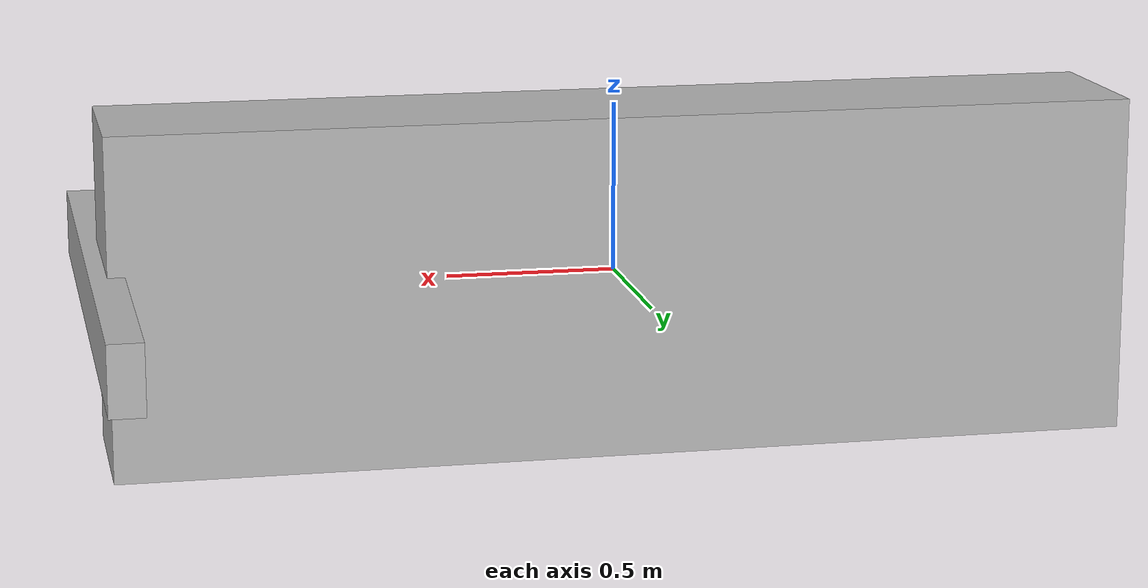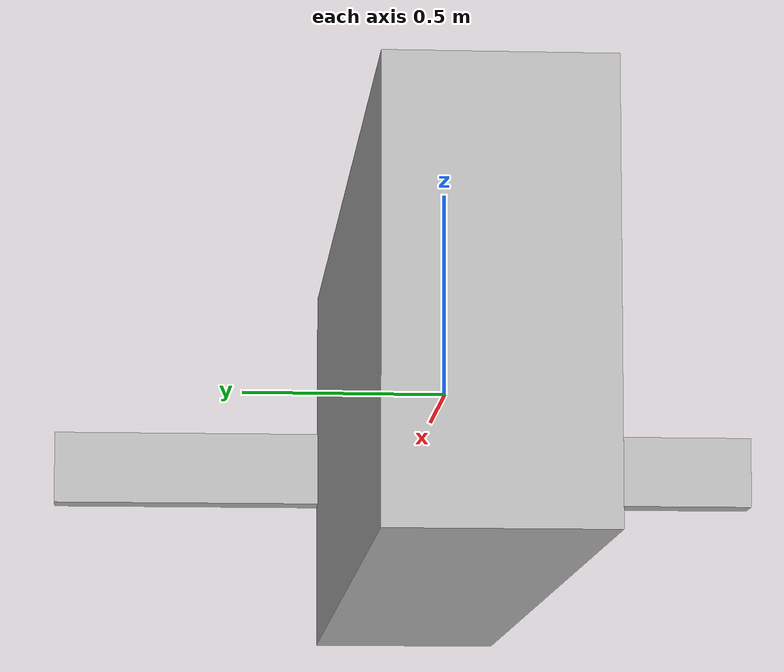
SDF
<?xml version="1.0"?>
<sdf version='1.10'>
  <model name='plane'>
	<link name="body">
		<pose>0 0 0 0 0 0</pose>
      <inertial>
        <pose>0 0 0 0 0 0</pose>
        <mass>1.5</mass>
        <inertia>
          <ixx>0.197563</ixx>
          <ixy>0</ixy>
          <ixz>0</ixz>
          <iyy>0.1458929</iyy>
          <iyz>0</iyz>
          <izz>0.1477</izz>
        </inertia>
      </inertial>
      <collision name='base_link_collision'>
        <pose>0 0 0 0 0 0</pose>
        <geometry>
          <box>
            <size>3 1.5 1</size>
          </box>
        </geometry>
      </collision>

      <visual name="main_vis">
      	<pose>0 0 0 0 0 0</pose>
      	<geometry>
      		<box>
      			<size>3 0.5 1</size>
      		</box>
      	</geometry>
      </visual>
	</link>

	<link name="prop">
		<pose degrees="true">1.5 0 0 0 0 0</pose>
		<inertial>
			<mass>0.001</mass>
			<inertia>
				<ixx>2e-06</ixx>
		      	<ixy>0</ixy>
		      	<ixz>0</ixz>
		      	<iyy>0.00033</iyy>
		      	<iyz>0</iyz>
		      	<izz>0.00033</izz>
			</inertia>
		</inertial>

		<collision name='prop_collision'>
        	<pose degrees="true">0 0 0 0 0 0</pose>
        	<geometry>
				<box>
					<size>0.01 0.02 0.02</size>
				</box>
        	</geometry>
      	</collision>

		<visual name="prop_vis">
			<pose degrees="true">0 0 0 0 0 0</pose>
			<geometry>
				<box>
					<size>0.1 2 0.2</size>
				</box>
			</geometry>
		</visual>
	</link>

	<joint name="prop_joint" type="revolute">
		<child>prop</child>
		<parent>body</parent>
		<pose>3 0 0   0 0 0</pose>
		<axis>
		    <xyz>1 0 0</xyz>
		    <limit>
		      	<lower>-1e+16</lower>
		      	<upper>1e+16</upper>
		    </limit>
      	</axis>
	</joint>

	<!-- imu for ardupilot plugin -->
	<link name='imu_link'>
      <inertial>
        <pose>0 0 0 0 0 0</pose>
        <mass>0.15</mass>
        <inertia>
          <ixx>0.00002</ixx>
          <ixy>0</ixy>
          <ixz>0</ixz>
          <iyy>0.00002</iyy>
          <iyz>0</iyz>
          <izz>0.00002</izz>
        </inertia>
      </inertial>
      <sensor name="imu_sensor" type="imu">
        <pose degrees="true">0 0 0 180 0 -90</pose>
        <always_on>1</always_on>
        <update_rate>1000.0</update_rate>
      </sensor>
    </link>
    <joint name='imu_joint' type='revolute'>
      <child>imu_link</child>
      <parent>body</parent>
      <axis>
        <xyz>0 0 1</xyz>
        <limit>
          <lower>0</lower>
          <upper>0</upper>
          <effort>0</effort>
          <velocity>0</velocity>
        </limit>
        <dynamics>
          <damping>1.0</damping>
        </dynamics>
      </axis>
    </joint>

	<!-- PLUGINS -->

	<plugin filename="gz-sim-joint-state-publisher-system"
      name="gz::sim::systems::JointStatePublisher">
    </plugin>

	<plugin filename="gz-sim-apply-joint-force-system"
      name="gz::sim::systems::ApplyJointForce">
      <joint_name>prop_joint</joint_name>
    </plugin>

	<plugin name="ArduPilotPlugin" filename="ArduPilotPlugin">
      <!-- Port settings -->
      <fdm_addr>127.0.0.1</fdm_addr>
      <fdm_port_in>9002</fdm_port_in>
      <connectionTimeoutMaxCount>5</connectionTimeoutMaxCount>
      <lock_step>1</lock_step>

      <modelXYZToAirplaneXForwardZDown degrees="true">0 0 0 180 0 -90</modelXYZToAirplaneXForwardZDown>
      <gazeboXYZToNED degrees="true">0 0 0 180 0 90</gazeboXYZToNED>

      <!-- Sensors -->
      <imuName>imu_link::imu_sensor</imuName>

      <!--
          incoming control command [0, 1]
          so offset it by 0 to get [0, 1]
          and divide max target by 1.
          offset = 0
          multiplier = 838 max rpm / 1 = 838
        -->

      <!--
          SERVO3_FUNCTION   70 (Throttle)
          SERVO3_MAX        1900
          SERVO3_MIN        1100
          SERVO3_REVERSED   0
          SERVO3_TRIM       1100
       -->
      <control channel="2">
        <jointName>prop_joint</jointName>
        <useForce>1</useForce>
        <multiplier>838</multiplier>
        <offset>0</offset>
        <servo_min>1100</servo_min>
        <servo_max>1900</servo_max>
        <type>VELOCITY</type>
        <p_gain>0.20</p_gain>
        <i_gain>0</i_gain>
        <d_gain>0</d_gain>
        <i_max>0</i_max>
        <i_min>0</i_min>
        <cmd_max>2.5</cmd_max>
        <cmd_min>0.0</cmd_min>
      </control>
    </plugin>

	<plugin name="gz::sim::v7::systems::AdvancedLiftDrag" filename="libgz-sim7-advanced-lift-drag-system.so.7">
      <a0>0.0</a0>
      <CL0>0.981</CL0>
      <AR>7.34</AR>
      <eff>0.97</eff>
      <CLa>6.2</CLa>
      <CD0>0.029</CD0>
      <Cem0>0.075</Cem0>
      <Cema>-0.463966</Cema>
      <CYb>-0.258244</CYb>
      <Cellb>-0.039250</Cellb>
      <Cenb>0.100826</Cenb>
      <CDp>0.0</CDp>
      <CYp>0.065861</CYp>
      <CLp>0.0</CLp>
      <Cellp>-0.487407</Cellp>
      <Cemp>0.0</Cemp>
      <Cenp>-0.040416</Cenp>
      <CDq>0.055166</CDq>
      <CYq>0.0</CYq>
      <CLq>7.971792</CLq>
      <Cellq>0.0</Cellq>
      <Cemq>-12.140140</Cemq>
      <Cenq>0.0</Cenq>
      <CDr>0.0</CDr>
      <CYr>0.230299</CYr>
      <CLr>0.0</CLr>
      <Cellr>0.078165</Cellr>
      <Cemr>0.0</Cemr>
      <Cenr>-0.089947</Cenr>
      <alpha_stall>0.3391428111</alpha_stall>
      <CLa_stall>-3.85</CLa_stall>
      <CDa_stall>-0.9233984055</CDa_stall>
      <Cema_stall>0</Cema_stall>
      <ref_pt>-0.12 0.0 0.0</ref_pt>
      <area>0.34</area>
      <mac>0.22</mac>
      <air_density>1.2041</air_density>
      <forward>1 0 0</forward>
      <upward>0 0 1</upward>
      <link_name>body</link_name>
      <topic_name>lift_force/left_elevon</topic_name>

    </plugin>

    <plugin filename="ThrustSystem" name="thrust_system::ThrustSystem">
    	<propeller_joint>prop_joint</propeller_joint>
    	<body_link>body</body_link>
    	<prop_diameter>52.07</prop_diameter>
    </plugin>
  </model>
</sdf>
